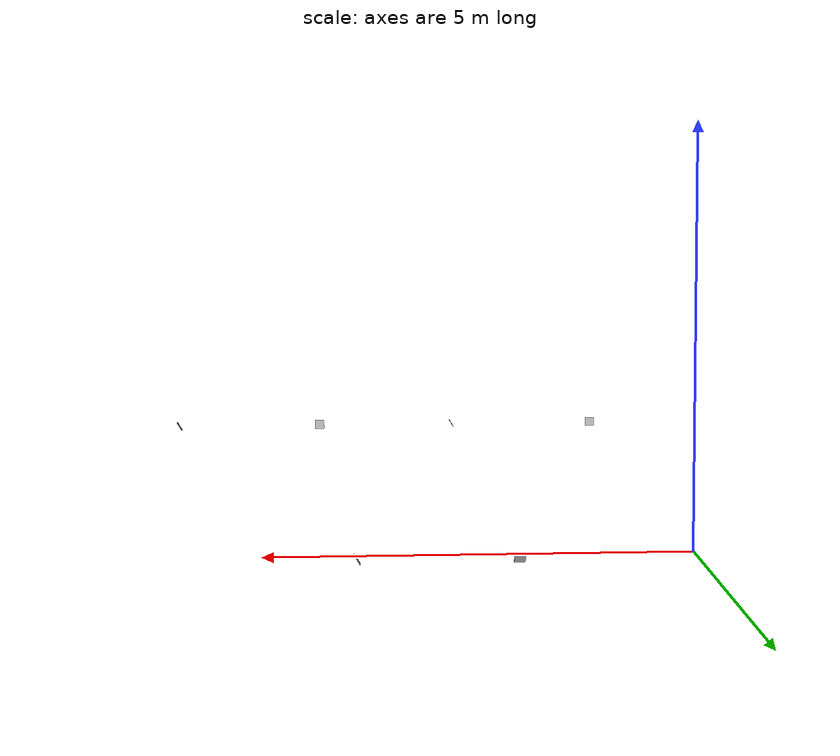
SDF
<sdf version='1.6'>
  <model name='turn_marker'>
  <static>true</static>
    <link name='base_link'>
      <visual name='base_link_visual'>
        <pose frame=''>0 0 0 0 0 0</pose>
        <geometry>
          <mesh>
            <scale>1 1 1</scale>
            <uri>model://turn_marker/turn.dae</uri>
          </mesh>
        </geometry>
      </visual>
    </link>
  </model>
</sdf>
